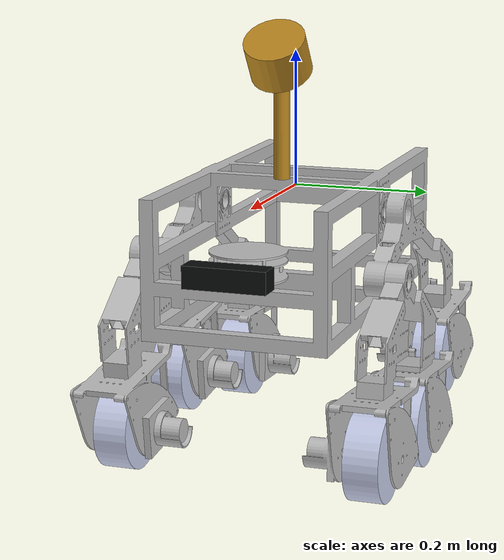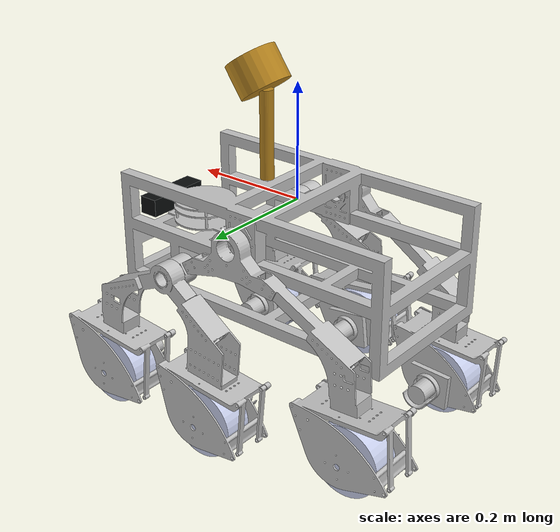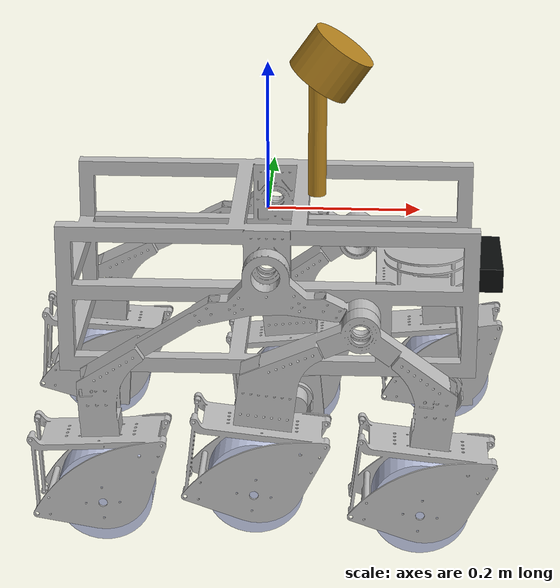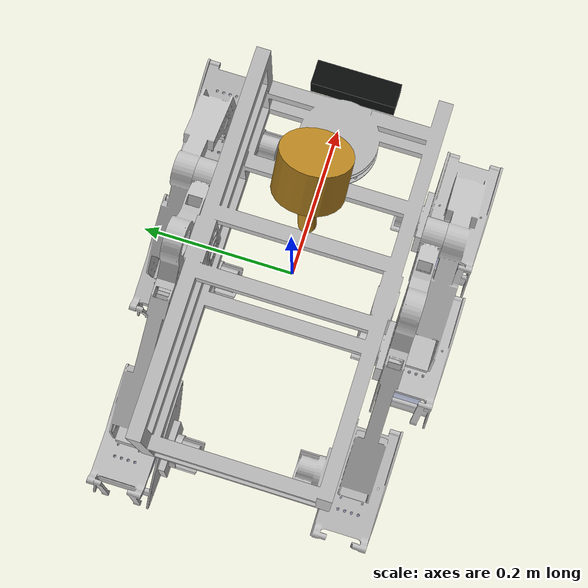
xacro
<?xml version="1.0"?>
<robot xmlns:xacro="http://www.ros.org/wiki/xacro" name="lunar_rover">
  <xacro:arg name="use_sim" default="true" />
  <xacro:arg name="sensor_noise" default="true" />
  <xacro:arg name="controller_config" default="" />
  <xacro:arg name="ros2_control_hardware_plugin" default="gz_ros2_control/GazeboSimSystem" />
  <link name="base_link" />
  <joint name="base_to_cad_joint" type="fixed">
    <origin xyz="0.2745 0.135 0" rpy="0 0 -1.570796327" />
    <parent link="base_link" />
    <child link="cad_base_link" />
  </joint>
  <material name="sensor_gold">
    <color rgba="0.72 0.52 0.12 1.0" />
  </material>
  <material name="camera_black">
    <color rgba="0.04 0.05 0.05 1.0" />
  </material>
  <link name="cad_base_link">
    <inertial>
      <origin xyz="0.135 -0.27 -0.08" rpy="0 0 0" />
      <mass value="2.66102812195056" />
      <inertia ixx="0.0871730280399543" ixy="2.52653750807994E-17" ixz="-2.97276813408766E-17" iyy="0.10347857567854" iyz="-0.00112967041600876" izz="0.0397987616200948" />
    </inertial>
    <visual>
      <origin xyz="0 0 0" rpy="0 0 0" />
      <geometry>
        <mesh filename="package://lunar_rover_description/meshes/base_link.STL" />
      </geometry>
      <material name="">
        <color rgba="0.752941176470588 0.752941176470588 0.752941176470588 1" />
      </material>
    </visual>
    <collision name="cad_base_link_chassis_collision">
      <origin xyz="0.135 -0.27 -0.08" rpy="0 0 0" />
      <geometry>
        <box size="0.279 0.54 0.20" />
      </geometry>
    </collision>
  </link>
  <link name="Left_bigrocker_Link">
    <inertial>
      <origin xyz="-0.11951969636961 0.15604688162279 0.00735982640416766" rpy="0 0 0" />
      <mass value="0.67439545579626" />
      <inertia ixx="0.000359243974983572" ixy="0.000122874386997477" ixz="-6.66882331680469E-08" iyy="0.000886427821175588" iyz="-1.31936193552274E-06" izz="0.00103852345526023" />
    </inertial>
    <visual>
      <origin xyz="0 0 0" rpy="0 0 0" />
      <geometry>
        <mesh filename="package://lunar_rover_description/meshes/Left_bigrocker_Link.STL" />
      </geometry>
      <material name="">
        <color rgba="0.752941176470588 0.752941176470588 0.752941176470588 1" />
      </material>
    </visual>
    <collision>
      <origin xyz="-0.08023 0.15743 0.025" rpy="0 0 0" />
      <geometry>
        <box size="0.45238 0.37482 0.06" />
      </geometry>
    </collision>
  </link>
  <joint name="right_rocker_joint" type="revolute">
    <origin xyz="0.296 -0.27 -0.03" rpy="-1.5708 0 1.5708" />
    <parent link="cad_base_link" />
    <child link="Left_bigrocker_Link" />
    <axis xyz="0 0 -1" />
    <limit lower="-0.45" upper="0.45" effort="180.0" velocity="1.5" />
    <dynamics damping="12.0" friction="0.5" />
  </joint>
  <link name="Left_smallrocker_Link">
    <inertial>
      <origin xyz="-0.0213309620359554 0.133910043641305 0.0101376587914976" rpy="0 0 0" />
      <mass value="0.977662571713298" />
      <inertia ixx="0.000524075502155883" ixy="1.7204224377679E-05" ixz="3.03978610846935E-07" iyy="0.00126462319782756" iyz="-2.62454658279965E-06" izz="0.00140058100592311" />
    </inertial>
    <visual>
      <origin xyz="0 0 0" rpy="0 0 0" />
      <geometry>
        <mesh filename="package://lunar_rover_description/meshes/Left_smallrocker_Link.STL" />
      </geometry>
      <material name="">
        <color rgba="0.752941176470588 0.752941176470588 0.752941176470588 1" />
      </material>
    </visual>
    <collision>
      <origin xyz="-0.02486 0.12617 0.025" rpy="0 0 0" />
      <geometry>
        <box size="0.40215 0.30210 0.055" />
      </geometry>
    </collision>
  </link>
  <joint name="right_bogie_joint" type="revolute">
    <origin xyz="0.12096 0.061797 -0.0299" rpy="0 0 0" />
    <parent link="Left_bigrocker_Link" />
    <child link="Left_smallrocker_Link" />
    <axis xyz="0 0 1" />
    <limit lower="-0.61" upper="0.61" effort="120.0" velocity="1.8" />
    <dynamics damping="8.0" friction="0.35" />
  </joint>
  <link name="LF_Link">
    <inertial>
      <origin xyz="-1.32935329411055E-13 2.60236276972137E-13 -5.55111512312578E-17" rpy="0 0 0" />
      <mass value="0.623449062104894" />
      <inertia ixx="0.000748502553145434" ixy="1.44701461822609E-20" ixz="3.74232737034773E-20" iyy="0.000748502553145434" iyz="3.45445951886511E-20" izz="0.00123723466374716" />
    </inertial>
    <visual>
      <origin xyz="0 0 0" rpy="0 0 0" />
      <geometry>
        <mesh filename="package://lunar_rover_description/meshes/LF_Link.STL" />
      </geometry>
      <material name="">
        <color rgba="0.792156862745098 0.819607843137255 0.933333333333333 1" />
      </material>
    </visual>
    <collision>
      <origin xyz="0 0 0" rpy="0 0 0" />
      <geometry>
        <cylinder radius="0.063" length="0.05" />
      </geometry>
    </collision>
  </link>
  <link name="right_front_steering_link">
    <inertial>
      <origin xyz="0 0 0" rpy="0 0 0" />
      <mass value="0.05" />
      <inertia ixx="0.00002" ixy="0" ixz="0" iyy="0.00002" iyz="0" izz="0.00002" />
    </inertial>
  </link>
  <joint name="right_front_steering_joint" type="revolute">
    <origin xyz="0.079563 0.23813 0.0001" rpy="0 0 0" />
    <parent link="Left_smallrocker_Link" />
    <child link="right_front_steering_link" />
    <axis xyz="0 -1 0" />
    <limit lower="-1.0471975512" upper="1.0471975512" effort="40.0" velocity="1.2" />
    <dynamics damping="0.8" friction="0.2" />
  </joint>
  <joint name="right_front_wheel_joint" type="continuous">
    <origin xyz="0 0 0" rpy="0 0 0" />
    <parent link="right_front_steering_link" />
    <child link="LF_Link" />
    <axis xyz="0 0 1" />
    <limit effort="70.0" velocity="12.0" />
    <dynamics damping="0.08" friction="0.03" />
  </joint>
  <link name="LM_Link">
    <inertial>
      <origin xyz="-1.33004718350094E-13 2.60125254669674E-13 0" rpy="0 0 0" />
      <mass value="0.623449062104894" />
      <inertia ixx="0.000748502553145435" ixy="-5.6468863150286E-21" ixz="-3.1619185424253E-19" iyy="0.000748502553145435" iyz="3.10381935884684E-20" izz="0.00123723466374716" />
    </inertial>
    <visual>
      <origin xyz="0 0 0" rpy="0 0 0" />
      <geometry>
        <mesh filename="package://lunar_rover_description/meshes/LM_Link.STL" />
      </geometry>
      <material name="">
        <color rgba="0.792156862745098 0.819607843137255 0.933333333333333 1" />
      </material>
    </visual>
    <collision>
      <origin xyz="0 0 0" rpy="0 0 0" />
      <geometry>
        <cylinder radius="0.063" length="0.05" />
      </geometry>
    </collision>
  </link>
  <joint name="right_middle_wheel_joint" type="continuous">
    <origin xyz="-0.13286 0.21354 -0.0001" rpy="0 0 0" />
    <parent link="Left_smallrocker_Link" />
    <child link="LM_Link" />
    <axis xyz="0 0 1" />
    <limit effort="70.0" velocity="12.0" />
    <dynamics damping="0.08" friction="0.03" />
  </joint>
  <link name="LB_Link">
    <inertial>
      <origin xyz="-6.58695320510105E-13 -4.51194637207664E-13 5.55111512312578E-17" rpy="0 0 0" />
      <mass value="0.623449062104894" />
      <inertia ixx="0.000748502553145435" ixy="-5.64688631502867E-21" ixz="-6.76735045147817E-21" iyy="0.000748502553145435" iyz="6.34575975651418E-21" izz="0.00123723466374716" />
    </inertial>
    <visual>
      <origin xyz="0 0 0" rpy="0 0 0" />
      <geometry>
        <mesh filename="package://lunar_rover_description/meshes/LB_Link.STL" />
      </geometry>
      <material name="">
        <color rgba="0.792156862745098 0.819607843137255 0.933333333333333 1" />
      </material>
    </visual>
    <collision>
      <origin xyz="0 0 0" rpy="0 0 0" />
      <geometry>
        <cylinder radius="0.063" length="0.05" />
      </geometry>
    </collision>
  </link>
  <link name="right_rear_steering_link">
    <inertial>
      <origin xyz="0 0 0" rpy="0 0 0" />
      <mass value="0.05" />
      <inertia ixx="0.00002" ixy="0" ixz="0" iyy="0.00002" iyz="0" izz="0.00002" />
    </inertial>
  </link>
  <joint name="right_rear_steering_joint" type="revolute">
    <origin xyz="-0.20979 0.30639 0" rpy="0 0 0" />
    <parent link="Left_bigrocker_Link" />
    <child link="right_rear_steering_link" />
    <axis xyz="0 -1 0" />
    <limit lower="-1.0471975512" upper="1.0471975512" effort="40.0" velocity="1.2" />
    <dynamics damping="0.8" friction="0.2" />
  </joint>
  <joint name="right_rear_wheel_joint" type="continuous">
    <origin xyz="0 0 0" rpy="0 0 0" />
    <parent link="right_rear_steering_link" />
    <child link="LB_Link" />
    <axis xyz="0 0 1" />
    <limit effort="70.0" velocity="12.0" />
    <dynamics damping="0.08" friction="0.03" />
  </joint>
  <link name="Right_bigrocker_Link">
    <inertial>
      <origin xyz="-0.136957555403586 0.141396165314059 -0.00734079878938477" rpy="0 0 0" />
      <mass value="0.674395455781592" />
      <inertia ixx="0.000338280477553281" ixy="6.00585519222765E-05" ixz="-8.38797074917229E-08" iyy="0.000907391317991293" iyz="1.31837916367076E-06" izz="0.00103852345481825" />
    </inertial>
    <visual>
      <origin xyz="0 0 0" rpy="0 0 0" />
      <geometry>
        <mesh filename="package://lunar_rover_description/meshes/Right_bigrocker_Link.STL" />
      </geometry>
      <material name="">
        <color rgba="0.752941176470588 0.752941176470588 0.752941176470588 1" />
      </material>
    </visual>
    <collision>
      <origin xyz="-0.09952 0.14457 -0.025" rpy="0 0 0" />
      <geometry>
        <box size="0.47518 0.34912 0.06" />
      </geometry>
    </collision>
  </link>
  <joint name="left_rocker_joint" type="revolute">
    <origin xyz="-0.026 -0.27 -0.03" rpy="-1.5708 0 1.5708" />
    <parent link="cad_base_link" />
    <child link="Right_bigrocker_Link" />
    <axis xyz="0 0 -1" />
    <limit lower="-0.45" upper="0.45" effort="180.0" velocity="1.5" />
    <dynamics damping="12.0" friction="0.5" />
  </joint>
  <link name="Right_smallrocker_Link">
    <inertial>
      <origin xyz="0.00750934323907551 0.135390248883595 -0.0101434383888438" rpy="0 0 0" />
      <mass value="0.977662571887994" />
      <inertia ixx="0.00056440386619048" ixy="0.000168922127395124" ixz="2.58837692035758E-07" iyy="0.00122429483621297" iyz="2.6293790424414E-06" izz="0.00140058100764939" />
    </inertial>
    <visual>
      <origin xyz="0 0 0" rpy="0 0 0" />
      <geometry>
        <mesh filename="package://lunar_rover_description/meshes/Right_smallrocker_Link.STL" />
      </geometry>
      <material name="">
        <color rgba="0.752941176470588 0.752941176470588 0.752941176470588 1" />
      </material>
    </visual>
    <collision>
      <origin xyz="0.01129 0.12513 -0.025" rpy="0 0 0" />
      <geometry>
        <box size="0.39304 0.30000 0.055" />
      </geometry>
    </collision>
  </link>
  <joint name="left_bogie_joint" type="revolute">
    <origin xyz="0.11314 0.075167 0.0301" rpy="0 0 0" />
    <parent link="Right_bigrocker_Link" />
    <child link="Right_smallrocker_Link" />
    <axis xyz="0 0 1" />
    <limit lower="-0.61" upper="0.61" effort="120.0" velocity="1.8" />
    <dynamics damping="8.0" friction="0.35" />
  </joint>
  <link name="RF_Link">
    <inertial>
      <origin xyz="-3.46944695195361E-18 0 6.93889390390723E-18" rpy="0 0 0" />
      <mass value="0.623449062104894" />
      <inertia ixx="0.000748502553145434" ixy="-1.05879118406786E-20" ixz="-5.65121948077026E-19" iyy="0.000748502553145434" iyz="2.12731797978661E-20" izz="0.00123723466374716" />
    </inertial>
    <visual>
      <origin xyz="0 0 0" rpy="0 0 0" />
      <geometry>
        <mesh filename="package://lunar_rover_description/meshes/RF_Link.STL" />
      </geometry>
      <material name="">
        <color rgba="0.792156862745098 0.819607843137255 0.933333333333333 1" />
      </material>
    </visual>
    <collision>
      <origin xyz="0 0 0" rpy="0 0 0" />
      <geometry>
        <cylinder radius="0.063" length="0.05" />
      </geometry>
    </collision>
  </link>
  <link name="left_front_steering_link">
    <inertial>
      <origin xyz="0 0 0" rpy="0 0 0" />
      <mass value="0.05" />
      <inertia ixx="0.00002" ixy="0" ixz="0" iyy="0.00002" iyz="0" izz="0.00002" />
    </inertial>
  </link>
  <joint name="left_front_steering_joint" type="revolute">
    <origin xyz="0.12819 0.21589 0.0001" rpy="0 0 0" />
    <parent link="Right_smallrocker_Link" />
    <child link="left_front_steering_link" />
    <axis xyz="0 -1 0" />
    <limit lower="-1.0471975512" upper="1.0471975512" effort="40.0" velocity="1.2" />
    <dynamics damping="0.8" friction="0.2" />
  </joint>
  <joint name="left_front_wheel_joint" type="continuous">
    <origin xyz="0 0 0" rpy="0 0 0" />
    <parent link="left_front_steering_link" />
    <child link="RF_Link" />
    <axis xyz="0 0 1" />
    <limit effort="70.0" velocity="12.0" />
    <dynamics damping="0.08" friction="0.03" />
  </joint>
  <link name="RM_Link">
    <inertial>
      <origin xyz="0 0 0" rpy="0 0 0" />
      <mass value="0.623449062104895" />
      <inertia ixx="0.000748502553145435" ixy="-1.97641021026002E-20" ixz="-5.65683557171579E-19" iyy="0.000748502553145435" iyz="2.22606363650714E-20" izz="0.00123723466374716" />
    </inertial>
    <visual>
      <origin xyz="0 0 0" rpy="0 0 0" />
      <geometry>
        <mesh filename="package://lunar_rover_description/meshes/RM_Link.STL" />
      </geometry>
      <material name="">
        <color rgba="0.792156862745098 0.819607843137255 0.933333333333333 1" />
      </material>
    </visual>
    <collision>
      <origin xyz="0 0 0" rpy="0 0 0" />
      <geometry>
        <cylinder radius="0.063" length="0.05" />
      </geometry>
    </collision>
  </link>
  <joint name="left_middle_wheel_joint" type="continuous">
    <origin xyz="-0.084631 0.23683 -0.0001" rpy="0 0 0" />
    <parent link="Right_smallrocker_Link" />
    <child link="RM_Link" />
    <axis xyz="0 0 1" />
    <limit effort="70.0" velocity="12.0" />
    <dynamics damping="0.08" friction="0.03" />
  </joint>
  <link name="RB_Link">
    <inertial>
      <origin xyz="0 5.55111512312578E-17 3.46944695195361E-18" rpy="0 0 0" />
      <mass value="0.623449062104895" />
      <inertia ixx="0.000748502553145435" ixy="2.29404756548026E-21" ixz="-5.08157673115411E-19" iyy="0.000748502553145435" iyz="-4.08279655159976E-20" izz="0.00123723466374716" />
    </inertial>
    <visual>
      <origin xyz="0 0 0" rpy="0 0 0" />
      <geometry>
        <mesh filename="package://lunar_rover_description/meshes/RB_Link.STL" />
      </geometry>
      <material name="">
        <color rgba="0.792156862745098 0.819607843137255 0.933333333333333 1" />
      </material>
    </visual>
    <collision>
      <origin xyz="0 0 0" rpy="0 0 0" />
      <geometry>
        <cylinder radius="0.063" length="0.05" />
      </geometry>
    </collision>
  </link>
  <link name="left_rear_steering_link">
    <inertial>
      <origin xyz="0 0 0" rpy="0 0 0" />
      <mass value="0.05" />
      <inertia ixx="0.00002" ixy="0" ixz="0" iyy="0.00002" iyz="0" izz="0.00002" />
    </inertial>
  </link>
  <joint name="left_rear_steering_joint" type="revolute">
    <origin xyz="-0.2443 0.28045 0" rpy="0 0 0" />
    <parent link="Right_bigrocker_Link" />
    <child link="left_rear_steering_link" />
    <axis xyz="0 -1 0" />
    <limit lower="-1.0471975512" upper="1.0471975512" effort="40.0" velocity="1.2" />
    <dynamics damping="0.8" friction="0.2" />
  </joint>
  <joint name="left_rear_wheel_joint" type="continuous">
    <origin xyz="0 0 0" rpy="0 0 0" />
    <parent link="left_rear_steering_link" />
    <child link="RB_Link" />
    <axis xyz="0 0 1" />
    <limit effort="70.0" velocity="12.0" />
    <dynamics damping="0.08" friction="0.03" />
  </joint>
  <link name="sensor_mast_link">
    <visual>
      <origin xyz="0 0 0.0775" rpy="0 0 0" />
      <geometry>
        <cylinder radius="0.012" length="0.155" />
      </geometry>
      <material name="sensor_gold" />
    </visual>
    <collision>
      <origin xyz="0 0 0.0775" rpy="0 0 0" />
      <geometry>
        <cylinder radius="0.012" length="0.155" />
      </geometry>
    </collision>
    <inertial>
      <origin xyz="0 0 0.0775" rpy="0 0 0" />
      <mass value="0.12" />
      <inertia ixx="0.000242" ixy="0" ixz="0" iyy="0.000242" iyz="0" izz="0.0000173" />
    </inertial>
  </link>
  <joint name="sensor_mast_joint" type="fixed">
    <origin xyz="0.135 -0.21 0.02" rpy="0 0 0" />
    <parent link="cad_base_link" />
    <child link="sensor_mast_link" />
  </joint>
  <link name="mid360_link">
    <visual>
      <origin xyz="0 0 0.03" rpy="0 0 0" />
      <geometry>
        <cylinder radius="0.045" length="0.06" />
      </geometry>
      <material name="sensor_gold" />
    </visual>
    <collision>
      <origin xyz="0 0 0.03" rpy="0 0 0" />
      <geometry>
        <cylinder radius="0.045" length="0.06" />
      </geometry>
    </collision>
    <inertial>
      <origin xyz="0 0 0.03" rpy="0 0 0" />
      <mass value="0.265" />
      <inertia ixx="0.000162" ixy="0" ixz="0" iyy="0.000162" iyz="0" izz="0.000268" />
    </inertial>
  </link>
  <joint name="mid360_joint" type="fixed">
    <origin xyz="0 0 0.155" rpy="0 0.610865238 1.570796327" />
    <parent link="sensor_mast_link" />
    <child link="mid360_link" />
  </joint>
  <link name="livox_frame" />
  <joint name="livox_frame_joint" type="fixed">
    <origin xyz="0 0 0" rpy="0 0 0" />
    <parent link="mid360_link" />
    <child link="livox_frame" />
  </joint>
  <link name="livox_imu_frame" />
  <joint name="livox_imu_frame_joint" type="fixed">
    <origin xyz="0 0 0" rpy="0 0 0" />
    <parent link="mid360_link" />
    <child link="livox_imu_frame" />
  </joint>
  <link name="gemini335_link">
    <visual>
      <origin xyz="0 0 0" rpy="0 0 0" />
      <geometry>
        <box size="0.035 0.12 0.032" />
      </geometry>
      <material name="camera_black" />
    </visual>
    <collision>
      <origin xyz="0 0 0" rpy="0 0 0" />
      <geometry>
        <box size="0.035 0.12 0.032" />
      </geometry>
    </collision>
    <inertial>
      <origin xyz="0 0 0" rpy="0 0 0" />
      <mass value="0.30" />
      <inertia ixx="0.000444" ixy="0" ixz="0" iyy="0.0000556" iyz="0" izz="0.000456" />
    </inertial>
  </link>
  <joint name="gemini335_joint" type="fixed">
    <origin xyz="0.135 0.0175 -0.075" rpy="0 0 1.570796327" />
    <parent link="cad_base_link" />
    <child link="gemini335_link" />
  </joint>
  <link name="gemini335_color_optical_frame" />
  <joint name="gemini335_color_optical_joint" type="fixed">
    <origin xyz="0.0175 0 0" rpy="-1.570796327 0 -1.570796327" />
    <parent link="gemini335_link" />
    <child link="gemini335_color_optical_frame" />
  </joint>
  <link name="gemini335_depth_optical_frame" />
  <joint name="gemini335_depth_optical_joint" type="fixed">
    <origin xyz="0 0 0" rpy="0 0 0" />
    <parent link="gemini335_color_optical_frame" />
    <child link="gemini335_depth_optical_frame" />
  </joint>
  <link name="camera_color_optical_frame" />
  <joint name="camera_color_optical_alias_joint" type="fixed">
    <origin xyz="0 0 0" rpy="0 0 0" />
    <parent link="gemini335_color_optical_frame" />
    <child link="camera_color_optical_frame" />
  </joint>
  <link name="camera_depth_optical_frame" />
  <joint name="camera_depth_optical_alias_joint" type="fixed">
    <origin xyz="0 0 0" rpy="0 0 0" />
    <parent link="gemini335_depth_optical_frame" />
    <child link="camera_depth_optical_frame" />
  </joint>
  <ros2_control name="LunarRoverRover1System" type="system">
    <hardware>
      <plugin>$(arg ros2_control_hardware_plugin)</plugin>
    </hardware>
    <joint name="left_front_steering_joint">
      <command_interface name="position">
        <param name="min">-1.0471975512</param>
        <param name="max">1.0471975512</param>
      </command_interface>
      <state_interface name="position" />
      <state_interface name="velocity" />
    </joint>
    <joint name="right_front_steering_joint">
      <command_interface name="position">
        <param name="min">-1.0471975512</param>
        <param name="max">1.0471975512</param>
      </command_interface>
      <state_interface name="position" />
      <state_interface name="velocity" />
    </joint>
    <joint name="left_rear_steering_joint">
      <command_interface name="position">
        <param name="min">-1.0471975512</param>
        <param name="max">1.0471975512</param>
      </command_interface>
      <state_interface name="position" />
      <state_interface name="velocity" />
    </joint>
    <joint name="right_rear_steering_joint">
      <command_interface name="position">
        <param name="min">-1.0471975512</param>
        <param name="max">1.0471975512</param>
      </command_interface>
      <state_interface name="position" />
      <state_interface name="velocity" />
    </joint>
    <joint name="left_front_wheel_joint">
      <command_interface name="velocity">
        <param name="min">-12.0</param>
        <param name="max">12.0</param>
      </command_interface>
      <state_interface name="position" />
      <state_interface name="velocity" />
    </joint>
    <joint name="right_front_wheel_joint">
      <command_interface name="velocity">
        <param name="min">-12.0</param>
        <param name="max">12.0</param>
      </command_interface>
      <state_interface name="position" />
      <state_interface name="velocity" />
    </joint>
    <joint name="left_middle_wheel_joint">
      <command_interface name="velocity">
        <param name="min">-12.0</param>
        <param name="max">12.0</param>
      </command_interface>
      <state_interface name="position" />
      <state_interface name="velocity" />
    </joint>
    <joint name="right_middle_wheel_joint">
      <command_interface name="velocity">
        <param name="min">-12.0</param>
        <param name="max">12.0</param>
      </command_interface>
      <state_interface name="position" />
      <state_interface name="velocity" />
    </joint>
    <joint name="left_rear_wheel_joint">
      <command_interface name="velocity">
        <param name="min">-12.0</param>
        <param name="max">12.0</param>
      </command_interface>
      <state_interface name="position" />
      <state_interface name="velocity" />
    </joint>
    <joint name="right_rear_wheel_joint">
      <command_interface name="velocity">
        <param name="min">-12.0</param>
        <param name="max">12.0</param>
      </command_interface>
      <state_interface name="position" />
      <state_interface name="velocity" />
    </joint>
    <joint name="left_rocker_joint">
      <command_interface name="effort">
        <param name="min">-180.0</param>
        <param name="max">180.0</param>
      </command_interface>
      <state_interface name="position" />
      <state_interface name="velocity" />
    </joint>
    <joint name="right_rocker_joint">
      <command_interface name="effort">
        <param name="min">-180.0</param>
        <param name="max">180.0</param>
      </command_interface>
      <state_interface name="position" />
      <state_interface name="velocity" />
    </joint>
    <joint name="left_bogie_joint">
      <state_interface name="position" />
      <state_interface name="velocity" />
    </joint>
    <joint name="right_bogie_joint">
      <state_interface name="position" />
      <state_interface name="velocity" />
    </joint>
  </ros2_control>
  <xacro:if value="$(arg use_sim)">
    <gazebo>
      <plugin filename="gz_ros2_control-system" name="gz_ros2_control::GazeboSimROS2ControlPlugin">
        <parameters>$(arg controller_config)</parameters>
      </plugin>
      <plugin filename="libignition-gazebo-odometry-publisher-system.so" name="ignition::gazebo::systems::OdometryPublisher">
        <odom_frame>world</odom_frame>
        <robot_base_frame>base_link</robot_base_frame>
        <odom_publish_frequency>50</odom_publish_frequency>
        <odom_topic>/simulation/ground_truth/odometry</odom_topic>
        <odom_covariance_topic>/simulation/ground_truth/odometry_with_covariance</odom_covariance_topic>
        <tf_topic>/simulation/ground_truth/tf</tf_topic>
        <dimensions>3</dimensions>
        <gaussian_noise>0.0</gaussian_noise>
      </plugin>
      <plugin filename="libignition-gazebo-touchplugin-system.so" name="ignition::gazebo::systems::TouchPlugin">
        <target>rock</target>
        <namespace>simulation/rock_collision</namespace>
        <time>0.001</time>
        <enabled>true</enabled>
      </plugin>
      <plugin filename="libignition-gazebo-touchplugin-system.so" name="ignition::gazebo::systems::TouchPlugin">
        <target>step</target>
        <namespace>simulation/step_collision</namespace>
        <time>0.001</time>
        <enabled>true</enabled>
      </plugin>
    </gazebo>
    <gazebo reference="RB_Link">
      <mu1>0.80</mu1>
      <mu2>0.50</mu2>
      <kp>300000.0</kp>
      <kd>60.0</kd>
      <minDepth>0.001</minDepth>
      <maxVel>0.10</maxVel>
      <selfCollide>false</selfCollide>
      <material>Gazebo/DarkGrey</material>
    </gazebo>
    <gazebo reference="RM_Link">
      <mu1>0.80</mu1>
      <mu2>0.50</mu2>
      <kp>300000.0</kp>
      <kd>60.0</kd>
      <minDepth>0.001</minDepth>
      <maxVel>0.10</maxVel>
      <selfCollide>false</selfCollide>
      <material>Gazebo/DarkGrey</material>
    </gazebo>
    <gazebo reference="RF_Link">
      <mu1>0.80</mu1>
      <mu2>0.50</mu2>
      <kp>300000.0</kp>
      <kd>60.0</kd>
      <minDepth>0.001</minDepth>
      <maxVel>0.10</maxVel>
      <selfCollide>false</selfCollide>
      <material>Gazebo/DarkGrey</material>
    </gazebo>
    <gazebo reference="LB_Link">
      <mu1>0.80</mu1>
      <mu2>0.50</mu2>
      <kp>300000.0</kp>
      <kd>60.0</kd>
      <minDepth>0.001</minDepth>
      <maxVel>0.10</maxVel>
      <selfCollide>false</selfCollide>
      <material>Gazebo/DarkGrey</material>
    </gazebo>
    <gazebo reference="LM_Link">
      <mu1>0.80</mu1>
      <mu2>0.50</mu2>
      <kp>300000.0</kp>
      <kd>60.0</kd>
      <minDepth>0.001</minDepth>
      <maxVel>0.10</maxVel>
      <selfCollide>false</selfCollide>
      <material>Gazebo/DarkGrey</material>
    </gazebo>
    <gazebo reference="LF_Link">
      <mu1>0.80</mu1>
      <mu2>0.50</mu2>
      <kp>300000.0</kp>
      <kd>60.0</kd>
      <minDepth>0.001</minDepth>
      <maxVel>0.10</maxVel>
      <selfCollide>false</selfCollide>
      <material>Gazebo/DarkGrey</material>
    </gazebo>
    <gazebo reference="mid360_link">
      <sensor name="mid360_gpu_lidar" type="gpu_lidar">
        <always_on>true</always_on>
        <visualize>true</visualize>
        <update_rate>10</update_rate>
        <topic>/mid360/scan</topic>
        <gz_frame_id>livox_frame</gz_frame_id>
        <lidar>
          <scan>
            <horizontal>
              <samples>1800</samples>
              <resolution>1</resolution>
              <min_angle>-3.141592654</min_angle>
              <max_angle>3.141592654</max_angle>
            </horizontal>
            <vertical>
              <samples>11</samples>
              <resolution>1</resolution>
              <min_angle>-0.122173048</min_angle>
              <max_angle>0.907571211</max_angle>
            </vertical>
          </scan>
          <range>
            <min>0.10</min>
            <max>40.0</max>
            <resolution>0.01</resolution>
          </range>
          <noise>
            <type>gaussian</type>
            <mean>0.0</mean>
            <stddev>0.0</stddev>
          </noise>
        </lidar>
      </sensor>
      <sensor name="mid360_imu" type="imu">
        <always_on>true</always_on>
        <update_rate>200</update_rate>
        <topic>/mid360/imu</topic>
        <gz_frame_id>livox_imu_frame</gz_frame_id>
        <imu>
          <angular_velocity>
            <x>
              <noise type="gaussian">
                <mean>0.0</mean>
                <xacro:if value="$(arg sensor_noise)">
                  <stddev>0.0007</stddev>
                </xacro:if>
                <xacro:unless value="$(arg sensor_noise)">
                  <stddev>0.0</stddev>
                </xacro:unless>
              </noise>
            </x>
            <y>
              <noise type="gaussian">
                <mean>0.0</mean>
                <xacro:if value="$(arg sensor_noise)">
                  <stddev>0.0007</stddev>
                </xacro:if>
                <xacro:unless value="$(arg sensor_noise)">
                  <stddev>0.0</stddev>
                </xacro:unless>
              </noise>
            </y>
            <z>
              <noise type="gaussian">
                <mean>0.0</mean>
                <xacro:if value="$(arg sensor_noise)">
                  <stddev>0.0007</stddev>
                </xacro:if>
                <xacro:unless value="$(arg sensor_noise)">
                  <stddev>0.0</stddev>
                </xacro:unless>
              </noise>
            </z>
          </angular_velocity>
          <linear_acceleration>
            <x>
              <noise type="gaussian">
                <mean>0.0</mean>
                <xacro:if value="$(arg sensor_noise)">
                  <stddev>0.02</stddev>
                </xacro:if>
                <xacro:unless value="$(arg sensor_noise)">
                  <stddev>0.0</stddev>
                </xacro:unless>
              </noise>
            </x>
            <y>
              <noise type="gaussian">
                <mean>0.0</mean>
                <xacro:if value="$(arg sensor_noise)">
                  <stddev>0.02</stddev>
                </xacro:if>
                <xacro:unless value="$(arg sensor_noise)">
                  <stddev>0.0</stddev>
                </xacro:unless>
              </noise>
            </y>
            <z>
              <noise type="gaussian">
                <mean>0.0</mean>
                <xacro:if value="$(arg sensor_noise)">
                  <stddev>0.02</stddev>
                </xacro:if>
                <xacro:unless value="$(arg sensor_noise)">
                  <stddev>0.0</stddev>
                </xacro:unless>
              </noise>
            </z>
          </linear_acceleration>
        </imu>
      </sensor>
    </gazebo>
    <gazebo reference="gemini335_link">
      <sensor name="gemini335_rgbd" type="rgbd_camera">
        <always_on>true</always_on>
        <visualize>true</visualize>
        <update_rate>15</update_rate>
        <topic>/gemini335</topic>
        <gz_frame_id>gemini335_color_optical_frame</gz_frame_id>
        <camera>
          <optical_frame_id>gemini335_color_optical_frame</optical_frame_id>
          <horizontal_fov>1.570796327</horizontal_fov>
          <image>
            <width>640</width>
            <height>400</height>
            <format>R8G8B8</format>
          </image>
          <clip>
            <near>0.10</near>
            <far>10.0</far>
          </clip>
          <noise>
            <type>gaussian</type>
            <mean>0.0</mean>
            <xacro:if value="$(arg sensor_noise)">
              <stddev>0.003</stddev>
            </xacro:if>
            <xacro:unless value="$(arg sensor_noise)">
              <stddev>0.0</stddev>
            </xacro:unless>
          </noise>
        </camera>
      </sensor>
    </gazebo>
  </xacro:if>
</robot>
